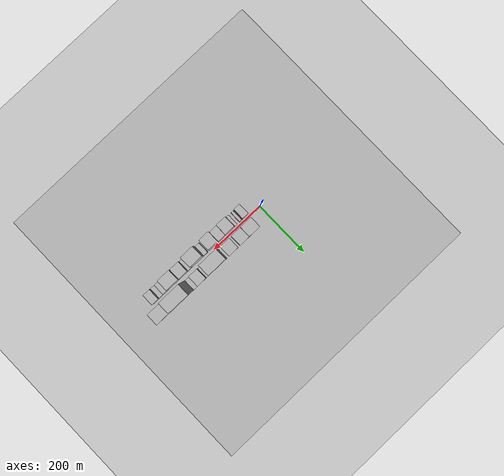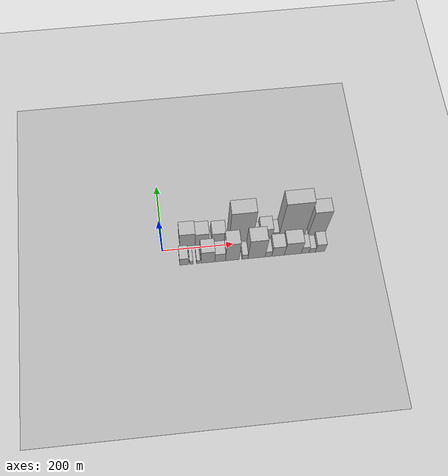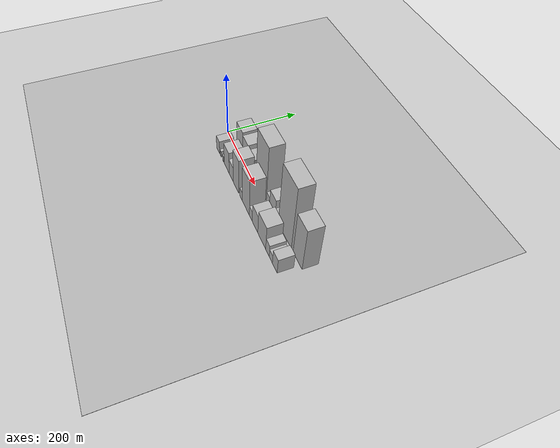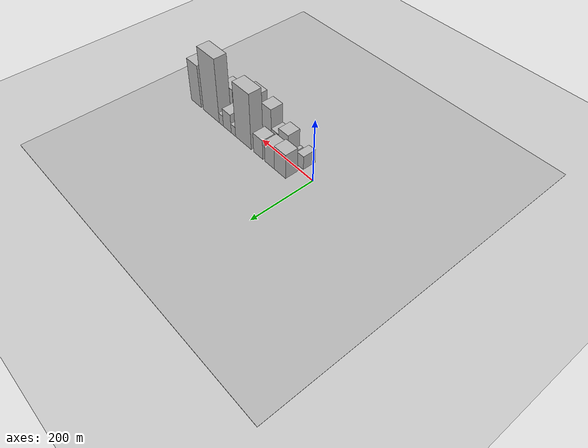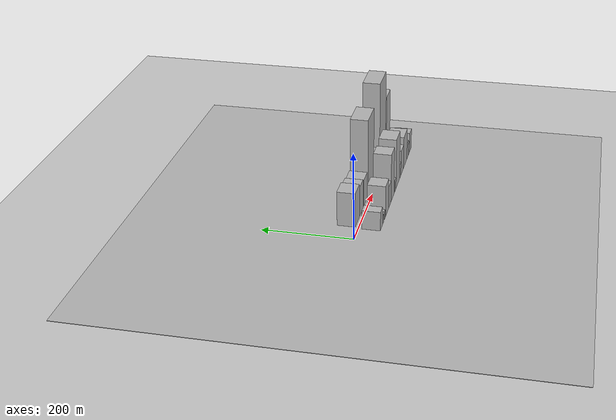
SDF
<?xml version="1.0" encoding="utf-8"?>

<sdf version="1.6">

   <world name="default">

      <gui fullscreen="0">

         <camera name="user_camera">

            <pose>-15 0 4.57585 0 0 0</pose>

            <view_controller>orbit</view_controller>

         </camera>

      </gui>

      <scene>

         <sky>

           <clouds>

             <speed>12</speed>

           </clouds>

         </sky>

         <ambient>0.4 0.4 0.4 1</ambient>

         <background>0.7 0.7 0.7 1</background>

         <shadows>1</shadows>

      </scene>

      <gravity>0 0 -9.8066</gravity>

      <magnetic_field>6e-06 2.3e-05 -4.2e-05</magnetic_field>

      <physics default="0" name="default_physics" type="ode">

         <ode>

            <solver>

               <type>quick</type>

               <iters>10</iters>

               <sor>1.0</sor>

               <use_dynamic_moi_rescaling>0</use_dynamic_moi_rescaling>

            </solver>

            <constraints>

               <cfm>0</cfm>

               <erp>0.2</erp>

               <contact_max_correcting_vel>100</contact_max_correcting_vel>

               <contact_surface_layer>0.001</contact_surface_layer>

            </constraints>

         </ode>

         <max_step_size>0.004</max_step_size>

         <real_time_factor>1</real_time_factor>

         <real_time_update_rate>250</real_time_update_rate>

      </physics>

      <light name="sun" type="directional">

         <cast_shadows>1</cast_shadows>

         <pose>0 0 10 0 0 0</pose>

         <diffuse>0.8 0.8 0.8 1</diffuse>

         <specular>0.2 0.2 0.2 1</specular>

         <attenuation>

            <range>1000</range>

            <constant>0.9</constant>

            <linear>0.01</linear>

            <quadratic>0.001</quadratic>

         </attenuation>

         <direction>-0.5 0.1 -0.9</direction>

      </light>

      <include>

         <name>ground_plane_1</name>

         <uri>model://HANNAS_ground_plane</uri>

         <pose>0 0 0  0 0 0</pose>

      </include>

      <include>

         <name>ground_plane_2</name>

         <uri>model://HANNAS_ground_plane</uri>

         <pose>100 0 0  0 0 0</pose>

      </include>

      <model name="building_1">

         <static>1</static>

         <pose frame="">71.9845 27.5000 0 0.000000 0.000000 1.570796</pose>

         <link name="link">

            <pose frame="">0 0 40.50 0 0 0</pose>

            <collision name="collision">

               <geometry>

                  <box>

                     <size>40.0000 43.9691 81.0000</size>

                  </box>

               </geometry>

               <max_contacts>10</max_contacts>

               <surface>

                  <contact>

                     <ode/>

                  </contact>

                  <bounce/>

                  <friction>

                     <torsional>

                        <ode/>

                     </torsional>

                     <ode/>

                  </friction>

               </surface>

            </collision>

            <visual name="visual">

               <cast_shadows>0</cast_shadows>

               <geometry>

                  <box>

                     <size>40.0000 43.9691 81.0000</size>

                  </box>

               </geometry>

               <material>

                  <script>

                     <uri>model://HANNAS_wall/materials/scripts</uri>

                     <uri>model://HANNAS_wall/materials/textures</uri>

                     <name>vrc/HANNAS_wall</name>

                  </script>

               </material>

            </visual>

            <self_collide>0</self_collide>

            <enable_wind>0</enable_wind>

            <kinematic>0</kinematic>

         </link>

      </model>

      <model name="building_2">

         <static>1</static>

         <pose frame="">113.1776 27.5000 0 0.000000 0.000000 1.570796</pose>

         <link name="link">

            <pose frame="">0 0 36.00 0 0 0</pose>

            <collision name="collision">

               <geometry>

                  <box>

                     <size>40.0000 38.4171 72.0000</size>

                  </box>

               </geometry>

               <max_contacts>10</max_contacts>

               <surface>

                  <contact>

                     <ode/>

                  </contact>

                  <bounce/>

                  <friction>

                     <torsional>

                        <ode/>

                     </torsional>

                     <ode/>

                  </friction>

               </surface>

            </collision>

            <visual name="visual">

               <cast_shadows>0</cast_shadows>

               <geometry>

                  <box>

                     <size>40.0000 38.4171 72.0000</size>

                  </box>

               </geometry>

               <material>

                  <script>

                     <uri>model://HANNAS_wall/materials/scripts</uri>

                     <uri>model://HANNAS_wall/materials/textures</uri>

                     <name>vrc/HANNAS_wall</name>

                  </script>

               </material>

            </visual>

            <self_collide>0</self_collide>

            <enable_wind>0</enable_wind>

            <kinematic>0</kinematic>

         </link>

      </model>

      <model name="building_3">

         <static>1</static>

         <pose frame="">159.7121 27.5000 0 0.000000 0.000000 1.570796</pose>

         <link name="link">

            <pose frame="">0 0 33.00 0 0 0</pose>

            <collision name="collision">

               <geometry>

                  <box>

                     <size>40.0000 38.6519 66.0000</size>

                  </box>

               </geometry>

               <max_contacts>10</max_contacts>

               <surface>

                  <contact>

                     <ode/>

                  </contact>

                  <bounce/>

                  <friction>

                     <torsional>

                        <ode/>

                     </torsional>

                     <ode/>

                  </friction>

               </surface>

            </collision>

            <visual name="visual">

               <cast_shadows>0</cast_shadows>

               <geometry>

                  <box>

                     <size>40.0000 38.6519 66.0000</size>

                  </box>

               </geometry>

               <material>

                  <script>

                     <uri>model://HANNAS_wall/materials/scripts</uri>

                     <uri>model://HANNAS_wall/materials/textures</uri>

                     <name>vrc/HANNAS_wall</name>

                  </script>

               </material>

            </visual>

            <self_collide>0</self_collide>

            <enable_wind>0</enable_wind>

            <kinematic>0</kinematic>

         </link>

      </model>

      <model name="building_4">

         <static>1</static>

         <pose frame="">222.7010 27.5000 0 0.000000 0.000000 1.570796</pose>

         <link name="link">

            <pose frame="">0 0 93.00 0 0 0</pose>

            <collision name="collision">

               <geometry>

                  <box>

                     <size>40.0000 67.3258 186.0000</size>

                  </box>

               </geometry>

               <max_contacts>10</max_contacts>

               <surface>

                  <contact>

                     <ode/>

                  </contact>

                  <bounce/>

                  <friction>

                     <torsional>

                        <ode/>

                     </torsional>

                     <ode/>

                  </friction>

               </surface>

            </collision>

            <visual name="visual">

               <cast_shadows>0</cast_shadows>

               <geometry>

                  <box>

                     <size>40.0000 67.3258 186.0000</size>

                  </box>

               </geometry>

               <material>

                  <script>

                     <uri>model://HANNAS_wall/materials/scripts</uri>

                     <uri>model://HANNAS_wall/materials/textures</uri>

                     <name>vrc/HANNAS_wall</name>

                  </script>

               </material>

            </visual>

            <self_collide>0</self_collide>

            <enable_wind>0</enable_wind>

            <kinematic>0</kinematic>

         </link>

      </model>

      <model name="building_5">

         <static>1</static>

         <pose frame="">265.9357 27.5000 0 0.000000 0.000000 1.570796</pose>

         <link name="link">

            <pose frame="">0 0 16.50 0 0 0</pose>

            <collision name="collision">

               <geometry>

                  <box>

                     <size>40.0000 19.1436 33.0000</size>

                  </box>

               </geometry>

               <max_contacts>10</max_contacts>

               <surface>

                  <contact>

                     <ode/>

                  </contact>

                  <bounce/>

                  <friction>

                     <torsional>

                        <ode/>

                     </torsional>

                     <ode/>

                  </friction>

               </surface>

            </collision>

            <visual name="visual">

               <cast_shadows>0</cast_shadows>

               <geometry>

                  <box>

                     <size>40.0000 19.1436 33.0000</size>

                  </box>

               </geometry>

               <material>

                  <script>

                     <uri>model://HANNAS_wall/materials/scripts</uri>

                     <uri>model://HANNAS_wall/materials/textures</uri>

                     <name>vrc/HANNAS_wall</name>

                  </script>

               </material>

            </visual>

            <self_collide>0</self_collide>

            <enable_wind>0</enable_wind>

            <kinematic>0</kinematic>

         </link>

      </model>

      <model name="building_6">

         <static>1</static>

         <pose frame="">293.1352 27.5000 0 0.000000 0.000000 1.570796</pose>

         <link name="link">

            <pose frame="">0 0 31.50 0 0 0</pose>

            <collision name="collision">

               <geometry>

                  <box>

                     <size>40.0000 35.2554 63.0000</size>

                  </box>

               </geometry>

               <max_contacts>10</max_contacts>

               <surface>

                  <contact>

                     <ode/>

                  </contact>

                  <bounce/>

                  <friction>

                     <torsional>

                        <ode/>

                     </torsional>

                     <ode/>

                  </friction>

               </surface>

            </collision>

            <visual name="visual">

               <cast_shadows>0</cast_shadows>

               <geometry>

                  <box>

                     <size>40.0000 35.2554 63.0000</size>

                  </box>

               </geometry>

               <material>

                  <script>

                     <uri>model://HANNAS_wall/materials/scripts</uri>

                     <uri>model://HANNAS_wall/materials/textures</uri>

                     <name>vrc/HANNAS_wall</name>

                  </script>

               </material>

            </visual>

            <self_collide>0</self_collide>

            <enable_wind>0</enable_wind>

            <kinematic>0</kinematic>

         </link>

      </model>

      <model name="building_7">

         <static>1</static>

         <pose frame="">320.0415 27.5000 0 0.000000 0.000000 1.570796</pose>

         <link name="link">

            <pose frame="">0 0 18.00 0 0 0</pose>

            <collision name="collision">

               <geometry>

                  <box>

                     <size>40.0000 18.5571 36.0000</size>

                  </box>

               </geometry>

               <max_contacts>10</max_contacts>

               <surface>

                  <contact>

                     <ode/>

                  </contact>

                  <bounce/>

                  <friction>

                     <torsional>

                        <ode/>

                     </torsional>

                     <ode/>

                  </friction>

               </surface>

            </collision>

            <visual name="visual">

               <cast_shadows>0</cast_shadows>

               <geometry>

                  <box>

                     <size>40.0000 18.5571 36.0000</size>

                  </box>

               </geometry>

               <material>

                  <script>

                     <uri>model://HANNAS_wall/materials/scripts</uri>

                     <uri>model://HANNAS_wall/materials/textures</uri>

                     <name>vrc/HANNAS_wall</name>

                  </script>

               </material>

            </visual>

            <self_collide>0</self_collide>

            <enable_wind>0</enable_wind>

            <kinematic>0</kinematic>

         </link>

      </model>

      <model name="building_8">

         <static>1</static>

         <pose frame="">366.6721 27.5000 0 0.000000 0.000000 1.570796</pose>

         <link name="link">

            <pose frame="">0 0 106.50 0 0 0</pose>

            <collision name="collision">

               <geometry>

                  <box>

                     <size>40.0000 74.7041 213.0000</size>

                  </box>

               </geometry>

               <max_contacts>10</max_contacts>

               <surface>

                  <contact>

                     <ode/>

                  </contact>

                  <bounce/>

                  <friction>

                     <torsional>

                        <ode/>

                     </torsional>

                     <ode/>

                  </friction>

               </surface>

            </collision>

            <visual name="visual">

               <cast_shadows>0</cast_shadows>

               <geometry>

                  <box>

                     <size>40.0000 74.7041 213.0000</size>

                  </box>

               </geometry>

               <material>

                  <script>

                     <uri>model://HANNAS_wall/materials/scripts</uri>

                     <uri>model://HANNAS_wall/materials/textures</uri>

                     <name>vrc/HANNAS_wall</name>

                  </script>

               </material>

            </visual>

            <self_collide>0</self_collide>

            <enable_wind>0</enable_wind>

            <kinematic>0</kinematic>

         </link>

      </model>

      <model name="building_9">

         <static>1</static>

         <pose frame="">438.0523 27.5000 0 0.000000 0.000000 1.570796</pose>

         <link name="link">

            <pose frame="">0 0 72.00 0 0 0</pose>

            <collision name="collision">

               <geometry>

                  <box>

                     <size>40.0000 48.0562 144.0000</size>

                  </box>

               </geometry>

               <max_contacts>10</max_contacts>

               <surface>

                  <contact>

                     <ode/>

                  </contact>

                  <bounce/>

                  <friction>

                     <torsional>

                        <ode/>

                     </torsional>

                     <ode/>

                  </friction>

               </surface>

            </collision>

            <visual name="visual">

               <cast_shadows>0</cast_shadows>

               <geometry>

                  <box>

                     <size>40.0000 48.0562 144.0000</size>

                  </box>

               </geometry>

               <material>

                  <script>

                     <uri>model://HANNAS_wall/materials/scripts</uri>

                     <uri>model://HANNAS_wall/materials/textures</uri>

                     <name>vrc/HANNAS_wall</name>

                  </script>

               </material>

            </visual>

            <self_collide>0</self_collide>

            <enable_wind>0</enable_wind>

            <kinematic>0</kinematic>

         </link>

      </model>

      <model name="building_10">

         <static>1</static>

         <pose frame="">57.2062 -27.5000 0 0.000000 0.000000 1.570796</pose>

         <link name="link">

            <pose frame="">0 0 22.50 0 0 0</pose>

            <collision name="collision">

               <geometry>

                  <box>

                     <size>40.0000 24.4124 45.0000</size>

                  </box>

               </geometry>

               <max_contacts>10</max_contacts>

               <surface>

                  <contact>

                     <ode/>

                  </contact>

                  <bounce/>

                  <friction>

                     <torsional>

                        <ode/>

                     </torsional>

                     <ode/>

                  </friction>

               </surface>

            </collision>

            <visual name="visual">

               <cast_shadows>0</cast_shadows>

               <geometry>

                  <box>

                     <size>40.0000 24.4124 45.0000</size>

                  </box>

               </geometry>

               <material>

                  <script>

                     <uri>model://HANNAS_wall/materials/scripts</uri>

                     <uri>model://HANNAS_wall/materials/textures</uri>

                     <name>vrc/HANNAS_wall</name>

                  </script>

               </material>

            </visual>

            <self_collide>0</self_collide>

            <enable_wind>0</enable_wind>

            <kinematic>0</kinematic>

         </link>

      </model>

      <model name="building_11">

         <static>1</static>

         <pose frame="">77.0801 -27.5000 0 0.000000 0.000000 1.570796</pose>

         <link name="link">

            <pose frame="">0 0 10.50 0 0 0</pose>

            <collision name="collision">

               <geometry>

                  <box>

                     <size>40.0000 9.3355 21.0000</size>

                  </box>

               </geometry>

               <max_contacts>10</max_contacts>

               <surface>

                  <contact>

                     <ode/>

                  </contact>

                  <bounce/>

                  <friction>

                     <torsional>

                        <ode/>

                     </torsional>

                     <ode/>

                  </friction>

               </surface>

            </collision>

            <visual name="visual">

               <cast_shadows>0</cast_shadows>

               <geometry>

                  <box>

                     <size>40.0000 9.3355 21.0000</size>

                  </box>

               </geometry>

               <material>

                  <script>

                     <uri>model://HANNAS_wall/materials/scripts</uri>

                     <uri>model://HANNAS_wall/materials/textures</uri>

                     <name>vrc/HANNAS_wall</name>

                  </script>

               </material>

            </visual>

            <self_collide>0</self_collide>

            <enable_wind>0</enable_wind>

            <kinematic>0</kinematic>

         </link>

      </model>

      <model name="building_12">

         <static>1</static>

         <pose frame="">96.7638 -27.5000 0 0.000000 0.000000 1.570796</pose>

         <link name="link">

            <pose frame="">0 0 10.50 0 0 0</pose>

            <collision name="collision">

               <geometry>

                  <box>

                     <size>40.0000 10.0319 21.0000</size>

                  </box>

               </geometry>

               <max_contacts>10</max_contacts>

               <surface>

                  <contact>

                     <ode/>

                  </contact>

                  <bounce/>

                  <friction>

                     <torsional>

                        <ode/>

                     </torsional>

                     <ode/>

                  </friction>

               </surface>

            </collision>

            <visual name="visual">

               <cast_shadows>0</cast_shadows>

               <geometry>

                  <box>

                     <size>40.0000 10.0319 21.0000</size>

                  </box>

               </geometry>

               <material>

                  <script>

                     <uri>model://HANNAS_wall/materials/scripts</uri>

                     <uri>model://HANNAS_wall/materials/textures</uri>

                     <name>vrc/HANNAS_wall</name>

                  </script>

               </material>

            </visual>

            <self_collide>0</self_collide>

            <enable_wind>0</enable_wind>

            <kinematic>0</kinematic>

         </link>

      </model>

      <model name="building_13">

         <static>1</static>

         <pose frame="">123.6720 -27.5000 0 0.000000 0.000000 1.570796</pose>

         <link name="link">

            <pose frame="">0 0 37.50 0 0 0</pose>

            <collision name="collision">

               <geometry>

                  <box>

                     <size>40.0000 37.7845 75.0000</size>

                  </box>

               </geometry>

               <max_contacts>10</max_contacts>

               <surface>

                  <contact>

                     <ode/>

                  </contact>

                  <bounce/>

                  <friction>

                     <torsional>

                        <ode/>

                     </torsional>

                     <ode/>

                  </friction>

               </surface>

            </collision>

            <visual name="visual">

               <cast_shadows>0</cast_shadows>

               <geometry>

                  <box>

                     <size>40.0000 37.7845 75.0000</size>

                  </box>

               </geometry>

               <material>

                  <script>

                     <uri>model://HANNAS_wall/materials/scripts</uri>

                     <uri>model://HANNAS_wall/materials/textures</uri>

                     <name>vrc/HANNAS_wall</name>

                  </script>

               </material>

            </visual>

            <self_collide>0</self_collide>

            <enable_wind>0</enable_wind>

            <kinematic>0</kinematic>

         </link>

      </model>

      <model name="building_14">

         <static>1</static>

         <pose frame="">157.3034 -27.5000 0 0.000000 0.000000 1.570796</pose>

         <link name="link">

            <pose frame="">0 0 27.00 0 0 0</pose>

            <collision name="collision">

               <geometry>

                  <box>

                     <size>40.0000 29.4784 54.0000</size>

                  </box>

               </geometry>

               <max_contacts>10</max_contacts>

               <surface>

                  <contact>

                     <ode/>

                  </contact>

                  <bounce/>

                  <friction>

                     <torsional>

                        <ode/>

                     </torsional>

                     <ode/>

                  </friction>

               </surface>

            </collision>

            <visual name="visual">

               <cast_shadows>0</cast_shadows>

               <geometry>

                  <box>

                     <size>40.0000 29.4784 54.0000</size>

                  </box>

               </geometry>

               <material>

                  <script>

                     <uri>model://HANNAS_wall/materials/scripts</uri>

                     <uri>model://HANNAS_wall/materials/textures</uri>

                     <name>vrc/HANNAS_wall</name>

                  </script>

               </material>

            </visual>

            <self_collide>0</self_collide>

            <enable_wind>0</enable_wind>

            <kinematic>0</kinematic>

         </link>

      </model>

      <model name="building_15">

         <static>1</static>

         <pose frame="">191.3268 -27.5000 0 0.000000 0.000000 1.570796</pose>

         <link name="link">

            <pose frame="">0 0 58.50 0 0 0</pose>

            <collision name="collision">

               <geometry>

                  <box>

                     <size>40.0000 38.5685 117.0000</size>

                  </box>

               </geometry>

               <max_contacts>10</max_contacts>

               <surface>

                  <contact>

                     <ode/>

                  </contact>

                  <bounce/>

                  <friction>

                     <torsional>

                        <ode/>

                     </torsional>

                     <ode/>

                  </friction>

               </surface>

            </collision>

            <visual name="visual">

               <cast_shadows>0</cast_shadows>

               <geometry>

                  <box>

                     <size>40.0000 38.5685 117.0000</size>

                  </box>

               </geometry>

               <material>

                  <script>

                     <uri>model://HANNAS_wall/materials/scripts</uri>

                     <uri>model://HANNAS_wall/materials/textures</uri>

                     <name>vrc/HANNAS_wall</name>

                  </script>

               </material>

            </visual>

            <self_collide>0</self_collide>

            <enable_wind>0</enable_wind>

            <kinematic>0</kinematic>

         </link>

      </model>

      <model name="building_16">

         <static>1</static>

         <pose frame="">226.8494 -27.5000 0 0.000000 0.000000 1.570796</pose>

         <link name="link">

            <pose frame="">0 0 15.00 0 0 0</pose>

            <collision name="collision">

               <geometry>

                  <box>

                     <size>40.0000 16.4766 30.0000</size>

                  </box>

               </geometry>

               <max_contacts>10</max_contacts>

               <surface>

                  <contact>

                     <ode/>

                  </contact>

                  <bounce/>

                  <friction>

                     <torsional>

                        <ode/>

                     </torsional>

                     <ode/>

                  </friction>

               </surface>

            </collision>

            <visual name="visual">

               <cast_shadows>0</cast_shadows>

               <geometry>

                  <box>

                     <size>40.0000 16.4766 30.0000</size>

                  </box>

               </geometry>

               <material>

                  <script>

                     <uri>model://HANNAS_wall/materials/scripts</uri>

                     <uri>model://HANNAS_wall/materials/textures</uri>

                     <name>vrc/HANNAS_wall</name>

                  </script>

               </material>

            </visual>

            <self_collide>0</self_collide>

            <enable_wind>0</enable_wind>

            <kinematic>0</kinematic>

         </link>

      </model>

      <model name="building_17">

         <static>1</static>

         <pose frame="">259.2063 -27.5000 0 0.000000 0.000000 1.570796</pose>

         <link name="link">

            <pose frame="">0 0 61.50 0 0 0</pose>

            <collision name="collision">

               <geometry>

                  <box>

                     <size>40.0000 48.2372 123.0000</size>

                  </box>

               </geometry>

               <max_contacts>10</max_contacts>

               <surface>

                  <contact>

                     <ode/>

                  </contact>

                  <bounce/>

                  <friction>

                     <torsional>

                        <ode/>

                     </torsional>

                     <ode/>

                  </friction>

               </surface>

            </collision>

            <visual name="visual">

               <cast_shadows>0</cast_shadows>

               <geometry>

                  <box>

                     <size>40.0000 48.2372 123.0000</size>

                  </box>

               </geometry>

               <material>

                  <script>

                     <uri>model://HANNAS_wall/materials/scripts</uri>

                     <uri>model://HANNAS_wall/materials/textures</uri>

                     <name>vrc/HANNAS_wall</name>

                  </script>

               </material>

            </visual>

            <self_collide>0</self_collide>

            <enable_wind>0</enable_wind>

            <kinematic>0</kinematic>

         </link>

      </model>

      <model name="building_18">

         <static>1</static>

         <pose frame="">292.6474 -27.5000 0 0.000000 0.000000 1.570796</pose>

         <link name="link">

            <pose frame="">0 0 18.00 0 0 0</pose>

            <collision name="collision">

               <geometry>

                  <box>

                     <size>40.0000 18.6450 36.0000</size>

                  </box>

               </geometry>

               <max_contacts>10</max_contacts>

               <surface>

                  <contact>

                     <ode/>

                  </contact>

                  <bounce/>

                  <friction>

                     <torsional>

                        <ode/>

                     </torsional>

                     <ode/>

                  </friction>

               </surface>

            </collision>

            <visual name="visual">

               <cast_shadows>0</cast_shadows>

               <geometry>

                  <box>

                     <size>40.0000 18.6450 36.0000</size>

                  </box>

               </geometry>

               <material>

                  <script>

                     <uri>model://HANNAS_wall/materials/scripts</uri>

                     <uri>model://HANNAS_wall/materials/textures</uri>

                     <name>vrc/HANNAS_wall</name>

                  </script>

               </material>

            </visual>

            <self_collide>0</self_collide>

            <enable_wind>0</enable_wind>

            <kinematic>0</kinematic>

         </link>

      </model>

      <model name="building_19">

         <static>1</static>

         <pose frame="">319.7411 -27.5000 0 0.000000 0.000000 1.570796</pose>

         <link name="link">

            <pose frame="">0 0 31.50 0 0 0</pose>

            <collision name="collision">

               <geometry>

                  <box>

                     <size>40.0000 35.5424 63.0000</size>

                  </box>

               </geometry>

               <max_contacts>10</max_contacts>

               <surface>

                  <contact>

                     <ode/>

                  </contact>

                  <bounce/>

                  <friction>

                     <torsional>

                        <ode/>

                     </torsional>

                     <ode/>

                  </friction>

               </surface>

            </collision>

            <visual name="visual">

               <cast_shadows>0</cast_shadows>

               <geometry>

                  <box>

                     <size>40.0000 35.5424 63.0000</size>

                  </box>

               </geometry>

               <material>

                  <script>

                     <uri>model://HANNAS_wall/materials/scripts</uri>

                     <uri>model://HANNAS_wall/materials/textures</uri>

                     <name>vrc/HANNAS_wall</name>

                  </script>

               </material>

            </visual>

            <self_collide>0</self_collide>

            <enable_wind>0</enable_wind>

            <kinematic>0</kinematic>

         </link>

      </model>

      <model name="building_20">

         <static>1</static>

         <pose frame="">361.3145 -27.5000 0 0.000000 0.000000 1.570796</pose>

         <link name="link">

            <pose frame="">0 0 40.50 0 0 0</pose>

            <collision name="collision">

               <geometry>

                  <box>

                     <size>40.0000 47.6045 81.0000</size>

                  </box>

               </geometry>

               <max_contacts>10</max_contacts>

               <surface>

                  <contact>

                     <ode/>

                  </contact>

                  <bounce/>

                  <friction>

                     <torsional>

                        <ode/>

                     </torsional>

                     <ode/>

                  </friction>

               </surface>

            </collision>

            <visual name="visual">

               <cast_shadows>0</cast_shadows>

               <geometry>

                  <box>

                     <size>40.0000 47.6045 81.0000</size>

                  </box>

               </geometry>

               <material>

                  <script>

                     <uri>model://HANNAS_wall/materials/scripts</uri>

                     <uri>model://HANNAS_wall/materials/textures</uri>

                     <name>vrc/HANNAS_wall</name>

                  </script>

               </material>

            </visual>

            <self_collide>0</self_collide>

            <enable_wind>0</enable_wind>

            <kinematic>0</kinematic>

         </link>

      </model>

      <model name="building_21">

         <static>1</static>

         <pose frame="">395.7867 -27.5000 0 0.000000 0.000000 1.570796</pose>

         <link name="link">

            <pose frame="">0 0 21.00 0 0 0</pose>

            <collision name="collision">

               <geometry>

                  <box>

                     <size>40.0000 21.3398 42.0000</size>

                  </box>

               </geometry>

               <max_contacts>10</max_contacts>

               <surface>

                  <contact>

                     <ode/>

                  </contact>

                  <bounce/>

                  <friction>

                     <torsional>

                        <ode/>

                     </torsional>

                     <ode/>

                  </friction>

               </surface>

            </collision>

            <visual name="visual">

               <cast_shadows>0</cast_shadows>

               <geometry>

                  <box>

                     <size>40.0000 21.3398 42.0000</size>

                  </box>

               </geometry>

               <material>

                  <script>

                     <uri>model://HANNAS_wall/materials/scripts</uri>

                     <uri>model://HANNAS_wall/materials/textures</uri>

                     <name>vrc/HANNAS_wall</name>

                  </script>

               </material>

            </visual>

            <self_collide>0</self_collide>

            <enable_wind>0</enable_wind>

            <kinematic>0</kinematic>

         </link>

      </model>

      <model name="building_22">

         <static>1</static>

         <pose frame="">415.3891 -27.5000 0 0.000000 0.000000 1.570796</pose>

         <link name="link">

            <pose frame="">0 0 15.00 0 0 0</pose>

            <collision name="collision">

               <geometry>

                  <box>

                     <size>40.0000 17.8650 30.0000</size>

                  </box>

               </geometry>

               <max_contacts>10</max_contacts>

               <surface>

                  <contact>

                     <ode/>

                  </contact>

                  <bounce/>

                  <friction>

                     <torsional>

                        <ode/>

                     </torsional>

                     <ode/>

                  </friction>

               </surface>

            </collision>

            <visual name="visual">

               <cast_shadows>0</cast_shadows>

               <geometry>

                  <box>

                     <size>40.0000 17.8650 30.0000</size>

                  </box>

               </geometry>

               <material>

                  <script>

                     <uri>model://HANNAS_wall/materials/scripts</uri>

                     <uri>model://HANNAS_wall/materials/textures</uri>

                     <name>vrc/HANNAS_wall</name>

                  </script>

               </material>

            </visual>

            <self_collide>0</self_collide>

            <enable_wind>0</enable_wind>

            <kinematic>0</kinematic>

         </link>

      </model>

      <model name="building_23">

         <static>1</static>

         <pose frame="">437.6659 -27.5000 0 0.000000 0.000000 1.570796</pose>

         <link name="link">

            <pose frame="">0 0 25.50 0 0 0</pose>

            <collision name="collision">

               <geometry>

                  <box>

                     <size>40.0000 26.6887 51.0000</size>

                  </box>

               </geometry>

               <max_contacts>10</max_contacts>

               <surface>

                  <contact>

                     <ode/>

                  </contact>

                  <bounce/>

                  <friction>

                     <torsional>

                        <ode/>

                     </torsional>

                     <ode/>

                  </friction>

               </surface>

            </collision>

            <visual name="visual">

               <cast_shadows>0</cast_shadows>

               <geometry>

                  <box>

                     <size>40.0000 26.6887 51.0000</size>

                  </box>

               </geometry>

               <material>

                  <script>

                     <uri>model://HANNAS_wall/materials/scripts</uri>

                     <uri>model://HANNAS_wall/materials/textures</uri>

                     <name>vrc/HANNAS_wall</name>

                  </script>

               </material>

            </visual>

            <self_collide>0</self_collide>

            <enable_wind>0</enable_wind>

            <kinematic>0</kinematic>

         </link>

      </model>

   </world>

</sdf>

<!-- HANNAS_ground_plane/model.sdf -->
<sdf version="1.4">
<model name="HANNAS_ground_plane">
  <static>true</static>
    <link name="link">
      <collision name="collision">
        <geometry>
          <plane>
            <normal>0 0 1</normal>
            <size>1000 1000</size>
          </plane>
        </geometry>
        <surface>
          <friction>
            <ode>
              <mu>100</mu>
              <mu2>50</mu2>
            </ode>
          </friction>
        </surface>
      </collision>
      <visual name="visual">
        <cast_shadows>false</cast_shadows>
        <geometry>
          <plane>
            <normal>0 0 1</normal>
            <size>1000 1000</size>
          </plane>
        </geometry>
        <material>
          <script>
            <uri>model://HANNAS_ground_plane/materials/scripts/HANNAS_ground_plane.material</uri>
	    <uri>model://HANNAS_ground_plane/materials/textures</uri>
            <name>HANNASGroundPlane/Image</name>
          </script>
        </material>
      </visual>
    </link>
  </model>
</sdf>
